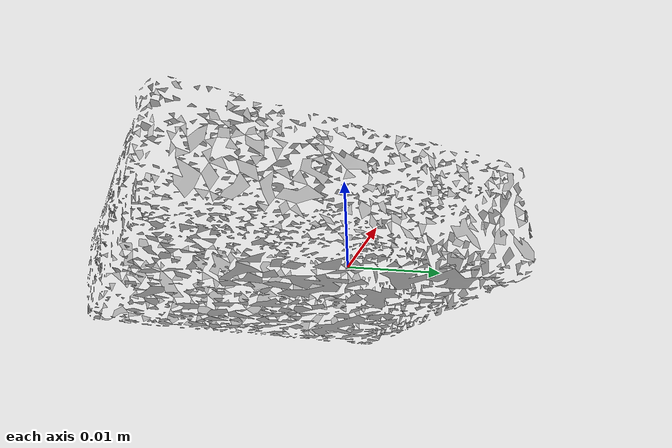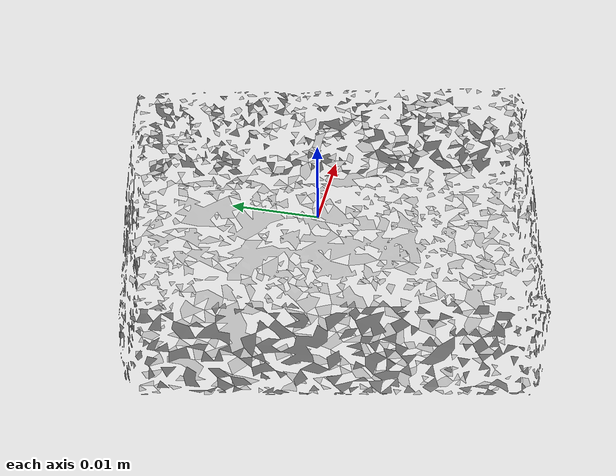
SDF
<?xml version='1.0'?>
<sdf version="1.6">
  <model name="gelatin_box">
    <static>false</static>
    <link name="link">
      <inertial>
        <pose>-0.01267551794293906 -0.005860203252540228 0.007877966045089096 -0.38129622835955573 -1.5653302217381688 -0.9614836103308723</pose>
        <mass>0.0001730558194301085</mass>
        <inertia>
          <ixx>1</ixx>
          <ixy>0</ixy>
          <ixz>0</ixz>
          <iyy>1</iyy>
          <iyz>0</iyz>
          <izz>1</izz>
        </inertia>
      </inertial>
      <collision name="collision">
        <geometry>
          <mesh>
            <!-- Use a downsampled mesh for collisions -->
            <uri>model://009_gelatin_box/downsampled.obj</uri>
            <scale>0.5 0.5 0.5</scale>
	        </mesh>
        </geometry>
        <surface>
      </surface>
      </collision>
      <visual name="visual">
        <geometry>
          <mesh>
            <uri>model://009_gelatin_box/google_16k/textured.obj</uri>
            <scale>0.5 0.5 0.5</scale>
	        </mesh>
        </geometry>
        <material>
          <script>
            <uri>model://009_gelatin_box/gelatin_box.material</uri>
            <name>gelatin_box</name>
          </script>
        </material>
      </visual>
    </link>
  </model>
</sdf>
